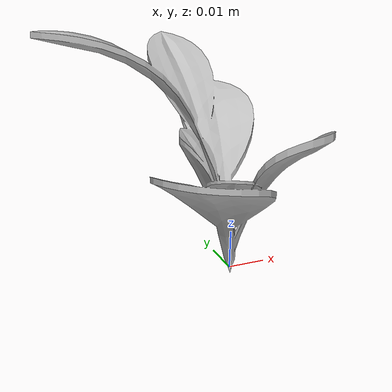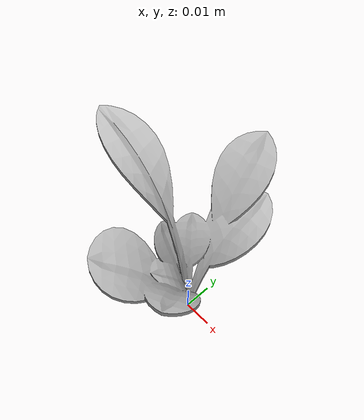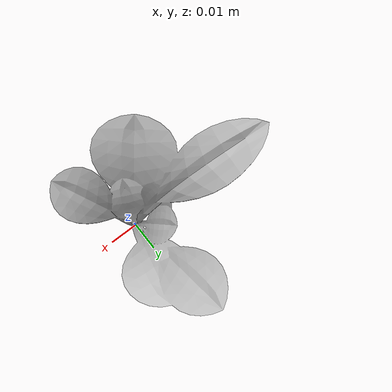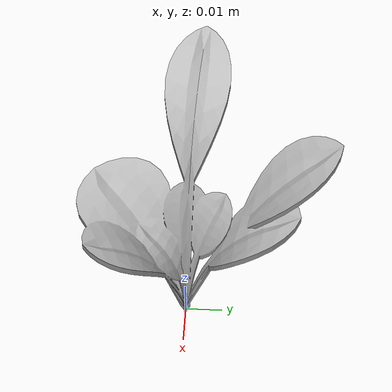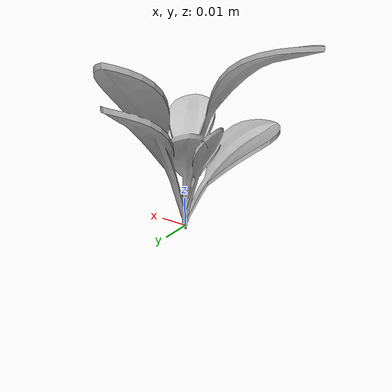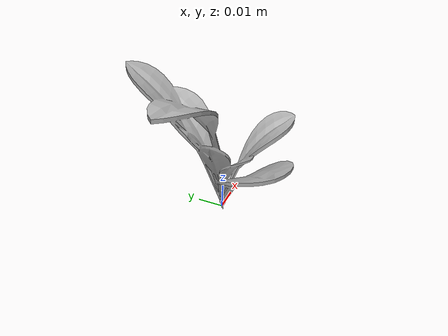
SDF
<sdf version="1.6">
  <model name="sugar_beet_34">
    <static>true</static>
    <link name="body">
      <visual name="visual">
        <geometry>
          <mesh>
            <uri>file:///sugar_beet_34/media/sugar_beet.dae</uri>
          </mesh>
        </geometry>
      </visual>
    </link>
  </model>
</sdf>
